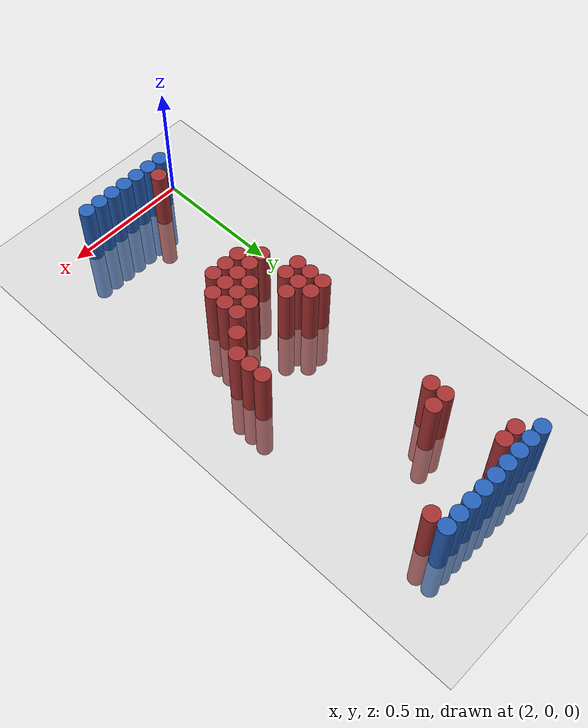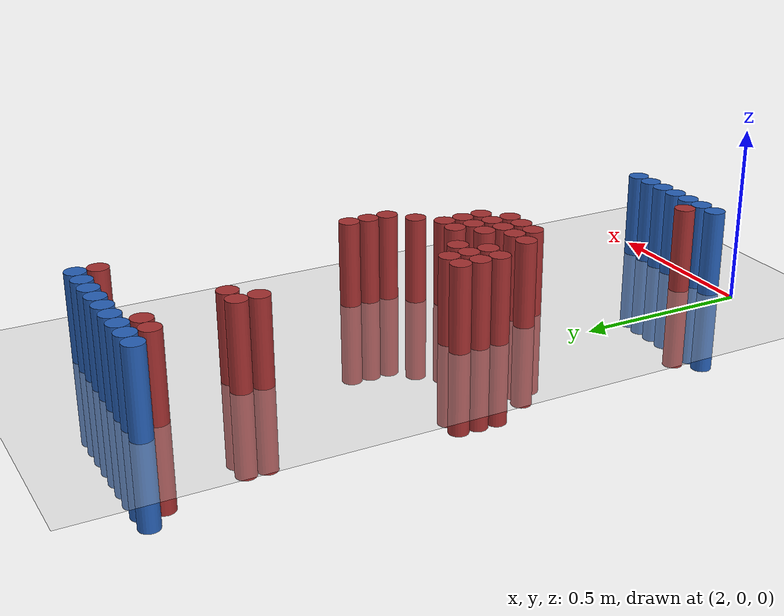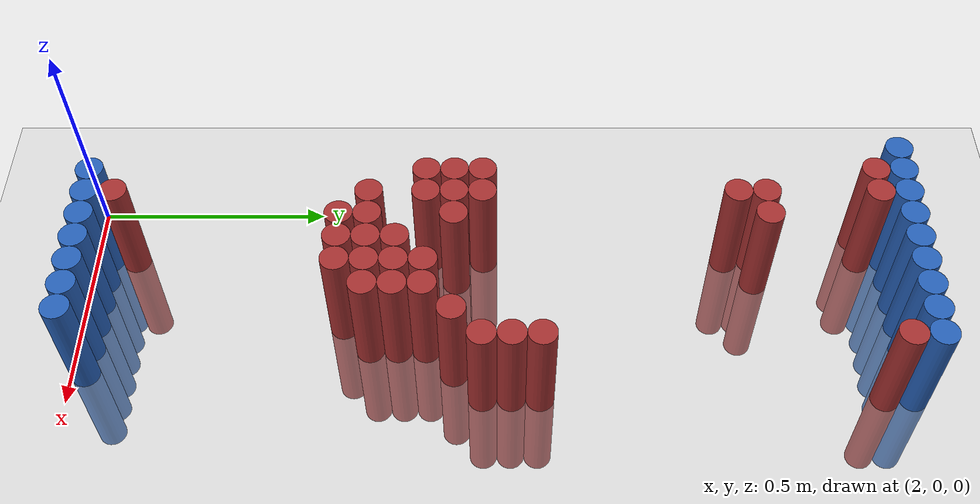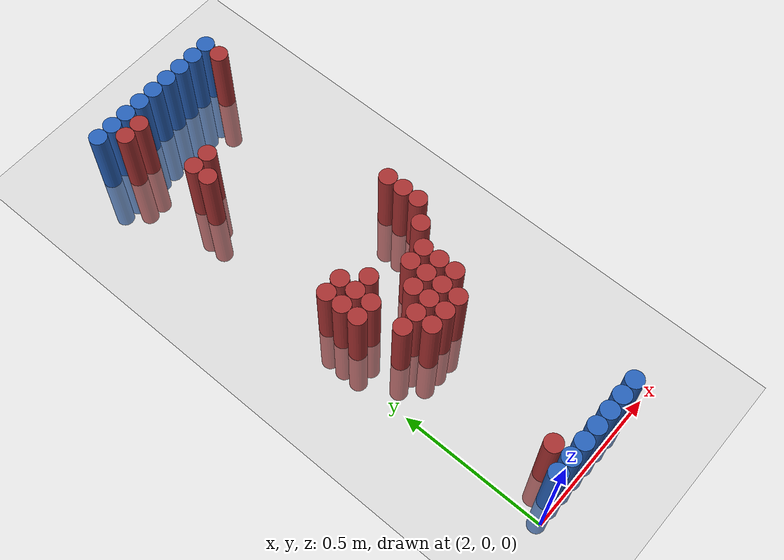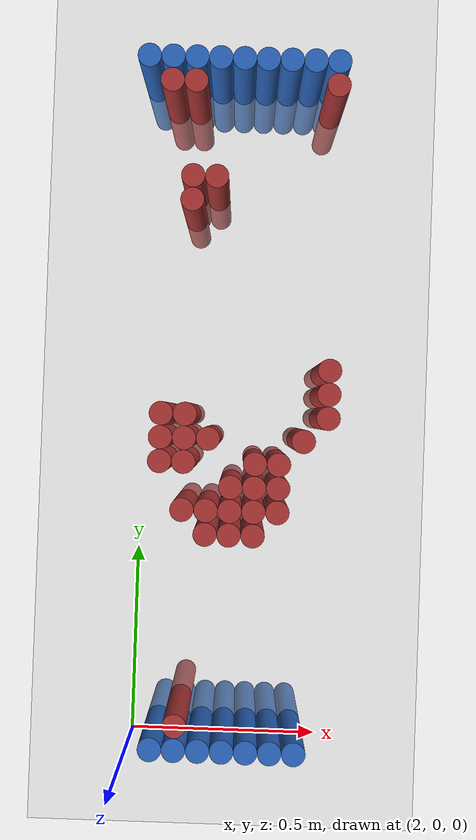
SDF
<sdf version="1.6">
 <world name="default">
  <model name="ground_plane">
   <static>1</static>
   <link name="link">
    <collision name="collision">
     <geometry><plane><normal>0 0 1</normal><size>100 100</size></plane></geometry>
     <surface><friction><ode><mu>100</mu><mu2>50</mu2></ode></friction></surface>
    </collision>
    <visual name="visual">
     <cast_shadows>0</cast_shadows>
     <geometry><plane><normal>0 0 1</normal><size>100 100</size></plane></geometry>
     <material>
      <script><uri>file://media/materials/scripts/gazebo.material</uri><name>Gazebo/Grey</name></script>
     </material>
    </visual>
   </link>
  </model>
  <model name="unit_cylinder_94">
   <static>1</static>
   <pose>2.010000 1.770000 0.000000 0.000000 0.000000 0.000000</pose>
   <link name="link">
    <inertial>
     <mass>1</mass>
     <inertia><ixx>0.145833</ixx><ixy>0</ixy><ixz>0</ixz><iyy>0.145833</iyy><iyz>0</iyz><izz>0.125</izz></inertia>
    </inertial>
    <collision name="collision">
     <geometry><cylinder><radius>0.030000</radius><length>0.5</length></cylinder></geometry>
    </collision>
    <visual name="visual">
     <geometry><cylinder><radius>0.030000</radius><length>0.5</length></cylinder></geometry>
     <material>
      <ambient>0.152000 0.379000 0.720000 1</ambient>
      <diffuse>0.152000 0.379000 0.720000 1</diffuse>
     </material>
     <material>
      <script><name>Gazebo/Grey</name><uri>file://media/materials/scripts/gazebo.material</uri></script>
     </material>
    </visual>
   </link>
  </model>
  <model name="unit_cylinder_95">
   <static>1</static>
   <pose>2.070000 1.770000 0.000000 0.000000 0.000000 0.000000</pose>
   <link name="link">
    <inertial>
     <mass>1</mass>
     <inertia><ixx>0.145833</ixx><ixy>0</ixy><ixz>0</ixz><iyy>0.145833</iyy><iyz>0</iyz><izz>0.125</izz></inertia>
    </inertial>
    <collision name="collision">
     <geometry><cylinder><radius>0.030000</radius><length>0.5</length></cylinder></geometry>
    </collision>
    <visual name="visual">
     <geometry><cylinder><radius>0.030000</radius><length>0.5</length></cylinder></geometry>
     <material>
      <ambient>0.152000 0.379000 0.720000 1</ambient>
      <diffuse>0.152000 0.379000 0.720000 1</diffuse>
     </material>
     <material>
      <script><name>Gazebo/Grey</name><uri>file://media/materials/scripts/gazebo.material</uri></script>
     </material>
    </visual>
   </link>
  </model>
  <model name="unit_cylinder_96">
   <static>1</static>
   <pose>2.130000 1.770000 0.000000 0.000000 0.000000 0.000000</pose>
   <link name="link">
    <inertial>
     <mass>1</mass>
     <inertia><ixx>0.145833</ixx><ixy>0</ixy><ixz>0</ixz><iyy>0.145833</iyy><iyz>0</iyz><izz>0.125</izz></inertia>
    </inertial>
    <collision name="collision">
     <geometry><cylinder><radius>0.030000</radius><length>0.5</length></cylinder></geometry>
    </collision>
    <visual name="visual">
     <geometry><cylinder><radius>0.030000</radius><length>0.5</length></cylinder></geometry>
     <material>
      <ambient>0.152000 0.379000 0.720000 1</ambient>
      <diffuse>0.152000 0.379000 0.720000 1</diffuse>
     </material>
     <material>
      <script><name>Gazebo/Grey</name><uri>file://media/materials/scripts/gazebo.material</uri></script>
     </material>
    </visual>
   </link>
  </model>
  <model name="unit_cylinder_97">
   <static>1</static>
   <pose>2.190000 1.770000 0.000000 0.000000 0.000000 0.000000</pose>
   <link name="link">
    <inertial>
     <mass>1</mass>
     <inertia><ixx>0.145833</ixx><ixy>0</ixy><ixz>0</ixz><iyy>0.145833</iyy><iyz>0</iyz><izz>0.125</izz></inertia>
    </inertial>
    <collision name="collision">
     <geometry><cylinder><radius>0.030000</radius><length>0.5</length></cylinder></geometry>
    </collision>
    <visual name="visual">
     <geometry><cylinder><radius>0.030000</radius><length>0.5</length></cylinder></geometry>
     <material>
      <ambient>0.152000 0.379000 0.720000 1</ambient>
      <diffuse>0.152000 0.379000 0.720000 1</diffuse>
     </material>
     <material>
      <script><name>Gazebo/Grey</name><uri>file://media/materials/scripts/gazebo.material</uri></script>
     </material>
    </visual>
   </link>
  </model>
  <model name="unit_cylinder_98">
   <static>1</static>
   <pose>2.250000 1.770000 0.000000 0.000000 0.000000 0.000000</pose>
   <link name="link">
    <inertial>
     <mass>1</mass>
     <inertia><ixx>0.145833</ixx><ixy>0</ixy><ixz>0</ixz><iyy>0.145833</iyy><iyz>0</iyz><izz>0.125</izz></inertia>
    </inertial>
    <collision name="collision">
     <geometry><cylinder><radius>0.030000</radius><length>0.5</length></cylinder></geometry>
    </collision>
    <visual name="visual">
     <geometry><cylinder><radius>0.030000</radius><length>0.5</length></cylinder></geometry>
     <material>
      <ambient>0.152000 0.379000 0.720000 1</ambient>
      <diffuse>0.152000 0.379000 0.720000 1</diffuse>
     </material>
     <material>
      <script><name>Gazebo/Grey</name><uri>file://media/materials/scripts/gazebo.material</uri></script>
     </material>
    </visual>
   </link>
  </model>
  <model name="unit_cylinder_99">
   <static>1</static>
   <pose>2.310000 1.770000 0.000000 0.000000 0.000000 0.000000</pose>
   <link name="link">
    <inertial>
     <mass>1</mass>
     <inertia><ixx>0.145833</ixx><ixy>0</ixy><ixz>0</ixz><iyy>0.145833</iyy><iyz>0</iyz><izz>0.125</izz></inertia>
    </inertial>
    <collision name="collision">
     <geometry><cylinder><radius>0.030000</radius><length>0.5</length></cylinder></geometry>
    </collision>
    <visual name="visual">
     <geometry><cylinder><radius>0.030000</radius><length>0.5</length></cylinder></geometry>
     <material>
      <ambient>0.152000 0.379000 0.720000 1</ambient>
      <diffuse>0.152000 0.379000 0.720000 1</diffuse>
     </material>
     <material>
      <script><name>Gazebo/Grey</name><uri>file://media/materials/scripts/gazebo.material</uri></script>
     </material>
    </visual>
   </link>
  </model>
  <model name="unit_cylinder_100">
   <static>1</static>
   <pose>2.370000 1.770000 0.000000 0.000000 0.000000 0.000000</pose>
   <link name="link">
    <inertial>
     <mass>1</mass>
     <inertia><ixx>0.145833</ixx><ixy>0</ixy><ixz>0</ixz><iyy>0.145833</iyy><iyz>0</iyz><izz>0.125</izz></inertia>
    </inertial>
    <collision name="collision">
     <geometry><cylinder><radius>0.030000</radius><length>0.5</length></cylinder></geometry>
    </collision>
    <visual name="visual">
     <geometry><cylinder><radius>0.030000</radius><length>0.5</length></cylinder></geometry>
     <material>
      <ambient>0.152000 0.379000 0.720000 1</ambient>
      <diffuse>0.152000 0.379000 0.720000 1</diffuse>
     </material>
     <material>
      <script><name>Gazebo/Grey</name><uri>file://media/materials/scripts/gazebo.material</uri></script>
     </material>
    </visual>
   </link>
  </model>
  <model name="unit_cylinder_101">
   <static>1</static>
   <pose>2.430000 1.770000 0.000000 0.000000 0.000000 0.000000</pose>
   <link name="link">
    <inertial>
     <mass>1</mass>
     <inertia><ixx>0.145833</ixx><ixy>0</ixy><ixz>0</ixz><iyy>0.145833</iyy><iyz>0</iyz><izz>0.125</izz></inertia>
    </inertial>
    <collision name="collision">
     <geometry><cylinder><radius>0.030000</radius><length>0.5</length></cylinder></geometry>
    </collision>
    <visual name="visual">
     <geometry><cylinder><radius>0.030000</radius><length>0.5</length></cylinder></geometry>
     <material>
      <ambient>0.152000 0.379000 0.720000 1</ambient>
      <diffuse>0.152000 0.379000 0.720000 1</diffuse>
     </material>
     <material>
      <script><name>Gazebo/Grey</name><uri>file://media/materials/scripts/gazebo.material</uri></script>
     </material>
    </visual>
   </link>
  </model>
  <model name="unit_cylinder_102">
   <static>1</static>
   <pose>2.490000 1.770000 0.000000 0.000000 0.000000 0.000000</pose>
   <link name="link">
    <inertial>
     <mass>1</mass>
     <inertia><ixx>0.145833</ixx><ixy>0</ixy><ixz>0</ixz><iyy>0.145833</iyy><iyz>0</iyz><izz>0.125</izz></inertia>
    </inertial>
    <collision name="collision">
     <geometry><cylinder><radius>0.030000</radius><length>0.5</length></cylinder></geometry>
    </collision>
    <visual name="visual">
     <geometry><cylinder><radius>0.030000</radius><length>0.5</length></cylinder></geometry>
     <material>
      <ambient>0.152000 0.379000 0.720000 1</ambient>
      <diffuse>0.152000 0.379000 0.720000 1</diffuse>
     </material>
     <material>
      <script><name>Gazebo/Grey</name><uri>file://media/materials/scripts/gazebo.material</uri></script>
     </material>
    </visual>
   </link>
  </model>
  <model name="unit_cylinder_125">
   <static>1</static>
   <pose>2.070000 1.710000 0.000000 0.000000 0.000000 0.000000</pose>
   <link name="link">
    <inertial>
     <mass>1</mass>
     <inertia><ixx>0.145833</ixx><ixy>0</ixy><ixz>0</ixz><iyy>0.145833</iyy><iyz>0</iyz><izz>0.125</izz></inertia>
    </inertial>
    <collision name="collision">
     <geometry><cylinder><radius>0.030000</radius><length>0.5</length></cylinder></geometry>
    </collision>
    <visual name="visual">
     <geometry><cylinder><radius>0.030000</radius><length>0.5</length></cylinder></geometry>
     <material>
      <ambient>0.648000 0.192000 0.192000 1</ambient>
      <diffuse>0.648000 0.192000 0.192000 1</diffuse>
     </material>
     <material>
      <script><name>Gazebo/Grey</name><uri>file://media/materials/scripts/gazebo.material</uri></script>
     </material>
    </visual>
   </link>
  </model>
  <model name="unit_cylinder_126">
   <static>1</static>
   <pose>2.130000 1.710000 0.000000 0.000000 0.000000 0.000000</pose>
   <link name="link">
    <inertial>
     <mass>1</mass>
     <inertia><ixx>0.145833</ixx><ixy>0</ixy><ixz>0</ixz><iyy>0.145833</iyy><iyz>0</iyz><izz>0.125</izz></inertia>
    </inertial>
    <collision name="collision">
     <geometry><cylinder><radius>0.030000</radius><length>0.5</length></cylinder></geometry>
    </collision>
    <visual name="visual">
     <geometry><cylinder><radius>0.030000</radius><length>0.5</length></cylinder></geometry>
     <material>
      <ambient>0.648000 0.192000 0.192000 1</ambient>
      <diffuse>0.648000 0.192000 0.192000 1</diffuse>
     </material>
     <material>
      <script><name>Gazebo/Grey</name><uri>file://media/materials/scripts/gazebo.material</uri></script>
     </material>
    </visual>
   </link>
  </model>
  <model name="unit_cylinder_127">
   <static>1</static>
   <pose>2.490000 1.710000 0.000000 0.000000 0.000000 0.000000</pose>
   <link name="link">
    <inertial>
     <mass>1</mass>
     <inertia><ixx>0.145833</ixx><ixy>0</ixy><ixz>0</ixz><iyy>0.145833</iyy><iyz>0</iyz><izz>0.125</izz></inertia>
    </inertial>
    <collision name="collision">
     <geometry><cylinder><radius>0.030000</radius><length>0.5</length></cylinder></geometry>
    </collision>
    <visual name="visual">
     <geometry><cylinder><radius>0.030000</radius><length>0.5</length></cylinder></geometry>
     <material>
      <ambient>0.648000 0.192000 0.192000 1</ambient>
      <diffuse>0.648000 0.192000 0.192000 1</diffuse>
     </material>
     <material>
      <script><name>Gazebo/Grey</name><uri>file://media/materials/scripts/gazebo.material</uri></script>
     </material>
    </visual>
   </link>
  </model>
  <model name="unit_cylinder_144">
   <static>1</static>
   <pose>2.130000 1.470000 0.000000 0.000000 0.000000 0.000000</pose>
   <link name="link">
    <inertial>
     <mass>1</mass>
     <inertia><ixx>0.145833</ixx><ixy>0</ixy><ixz>0</ixz><iyy>0.145833</iyy><iyz>0</iyz><izz>0.125</izz></inertia>
    </inertial>
    <collision name="collision">
     <geometry><cylinder><radius>0.030000</radius><length>0.5</length></cylinder></geometry>
    </collision>
    <visual name="visual">
     <geometry><cylinder><radius>0.030000</radius><length>0.5</length></cylinder></geometry>
     <material>
      <ambient>0.648000 0.192000 0.192000 1</ambient>
      <diffuse>0.648000 0.192000 0.192000 1</diffuse>
     </material>
     <material>
      <script><name>Gazebo/Grey</name><uri>file://media/materials/scripts/gazebo.material</uri></script>
     </material>
    </visual>
   </link>
  </model>
  <model name="unit_cylinder_145">
   <static>1</static>
   <pose>2.190000 1.470000 0.000000 0.000000 0.000000 0.000000</pose>
   <link name="link">
    <inertial>
     <mass>1</mass>
     <inertia><ixx>0.145833</ixx><ixy>0</ixy><ixz>0</ixz><iyy>0.145833</iyy><iyz>0</iyz><izz>0.125</izz></inertia>
    </inertial>
    <collision name="collision">
     <geometry><cylinder><radius>0.030000</radius><length>0.5</length></cylinder></geometry>
    </collision>
    <visual name="visual">
     <geometry><cylinder><radius>0.030000</radius><length>0.5</length></cylinder></geometry>
     <material>
      <ambient>0.648000 0.192000 0.192000 1</ambient>
      <diffuse>0.648000 0.192000 0.192000 1</diffuse>
     </material>
     <material>
      <script><name>Gazebo/Grey</name><uri>file://media/materials/scripts/gazebo.material</uri></script>
     </material>
    </visual>
   </link>
  </model>
  <model name="unit_cylinder_152">
   <static>1</static>
   <pose>2.130000 1.410000 0.000000 0.000000 0.000000 0.000000</pose>
   <link name="link">
    <inertial>
     <mass>1</mass>
     <inertia><ixx>0.145833</ixx><ixy>0</ixy><ixz>0</ixz><iyy>0.145833</iyy><iyz>0</iyz><izz>0.125</izz></inertia>
    </inertial>
    <collision name="collision">
     <geometry><cylinder><radius>0.030000</radius><length>0.5</length></cylinder></geometry>
    </collision>
    <visual name="visual">
     <geometry><cylinder><radius>0.030000</radius><length>0.5</length></cylinder></geometry>
     <material>
      <ambient>0.648000 0.192000 0.192000 1</ambient>
      <diffuse>0.648000 0.192000 0.192000 1</diffuse>
     </material>
     <material>
      <script><name>Gazebo/Grey</name><uri>file://media/materials/scripts/gazebo.material</uri></script>
     </material>
    </visual>
   </link>
  </model>
  <model name="unit_cylinder_203">
   <static>1</static>
   <pose>2.490000 0.990000 0.000000 0.000000 0.000000 0.000000</pose>
   <link name="link">
    <inertial>
     <mass>1</mass>
     <inertia><ixx>0.145833</ixx><ixy>0</ixy><ixz>0</ixz><iyy>0.145833</iyy><iyz>0</iyz><izz>0.125</izz></inertia>
    </inertial>
    <collision name="collision">
     <geometry><cylinder><radius>0.030000</radius><length>0.5</length></cylinder></geometry>
    </collision>
    <visual name="visual">
     <geometry><cylinder><radius>0.030000</radius><length>0.5</length></cylinder></geometry>
     <material>
      <ambient>0.648000 0.192000 0.192000 1</ambient>
      <diffuse>0.648000 0.192000 0.192000 1</diffuse>
     </material>
     <material>
      <script><name>Gazebo/Grey</name><uri>file://media/materials/scripts/gazebo.material</uri></script>
     </material>
    </visual>
   </link>
  </model>
  <model name="unit_cylinder_212">
   <static>1</static>
   <pose>2.490000 0.930000 0.000000 0.000000 0.000000 0.000000</pose>
   <link name="link">
    <inertial>
     <mass>1</mass>
     <inertia><ixx>0.145833</ixx><ixy>0</ixy><ixz>0</ixz><iyy>0.145833</iyy><iyz>0</iyz><izz>0.125</izz></inertia>
    </inertial>
    <collision name="collision">
     <geometry><cylinder><radius>0.030000</radius><length>0.5</length></cylinder></geometry>
    </collision>
    <visual name="visual">
     <geometry><cylinder><radius>0.030000</radius><length>0.5</length></cylinder></geometry>
     <material>
      <ambient>0.648000 0.192000 0.192000 1</ambient>
      <diffuse>0.648000 0.192000 0.192000 1</diffuse>
     </material>
     <material>
      <script><name>Gazebo/Grey</name><uri>file://media/materials/scripts/gazebo.material</uri></script>
     </material>
    </visual>
   </link>
  </model>
  <model name="unit_cylinder_218">
   <static>1</static>
   <pose>2.070000 0.870000 0.000000 0.000000 0.000000 0.000000</pose>
   <link name="link">
    <inertial>
     <mass>1</mass>
     <inertia><ixx>0.145833</ixx><ixy>0</ixy><ixz>0</ixz><iyy>0.145833</iyy><iyz>0</iyz><izz>0.125</izz></inertia>
    </inertial>
    <collision name="collision">
     <geometry><cylinder><radius>0.030000</radius><length>0.5</length></cylinder></geometry>
    </collision>
    <visual name="visual">
     <geometry><cylinder><radius>0.030000</radius><length>0.5</length></cylinder></geometry>
     <material>
      <ambient>0.648000 0.192000 0.192000 1</ambient>
      <diffuse>0.648000 0.192000 0.192000 1</diffuse>
     </material>
     <material>
      <script><name>Gazebo/Grey</name><uri>file://media/materials/scripts/gazebo.material</uri></script>
     </material>
    </visual>
   </link>
  </model>
  <model name="unit_cylinder_219">
   <static>1</static>
   <pose>2.130000 0.870000 0.000000 0.000000 0.000000 0.000000</pose>
   <link name="link">
    <inertial>
     <mass>1</mass>
     <inertia><ixx>0.145833</ixx><ixy>0</ixy><ixz>0</ixz><iyy>0.145833</iyy><iyz>0</iyz><izz>0.125</izz></inertia>
    </inertial>
    <collision name="collision">
     <geometry><cylinder><radius>0.030000</radius><length>0.5</length></cylinder></geometry>
    </collision>
    <visual name="visual">
     <geometry><cylinder><radius>0.030000</radius><length>0.5</length></cylinder></geometry>
     <material>
      <ambient>0.648000 0.192000 0.192000 1</ambient>
      <diffuse>0.648000 0.192000 0.192000 1</diffuse>
     </material>
     <material>
      <script><name>Gazebo/Grey</name><uri>file://media/materials/scripts/gazebo.material</uri></script>
     </material>
    </visual>
   </link>
  </model>
  <model name="unit_cylinder_220">
   <static>1</static>
   <pose>2.490000 0.870000 0.000000 0.000000 0.000000 0.000000</pose>
   <link name="link">
    <inertial>
     <mass>1</mass>
     <inertia><ixx>0.145833</ixx><ixy>0</ixy><ixz>0</ixz><iyy>0.145833</iyy><iyz>0</iyz><izz>0.125</izz></inertia>
    </inertial>
    <collision name="collision">
     <geometry><cylinder><radius>0.030000</radius><length>0.5</length></cylinder></geometry>
    </collision>
    <visual name="visual">
     <geometry><cylinder><radius>0.030000</radius><length>0.5</length></cylinder></geometry>
     <material>
      <ambient>0.648000 0.192000 0.192000 1</ambient>
      <diffuse>0.648000 0.192000 0.192000 1</diffuse>
     </material>
     <material>
      <script><name>Gazebo/Grey</name><uri>file://media/materials/scripts/gazebo.material</uri></script>
     </material>
    </visual>
   </link>
  </model>
  <model name="unit_cylinder_227">
   <static>1</static>
   <pose>2.070000 0.810000 0.000000 0.000000 0.000000 0.000000</pose>
   <link name="link">
    <inertial>
     <mass>1</mass>
     <inertia><ixx>0.145833</ixx><ixy>0</ixy><ixz>0</ixz><iyy>0.145833</iyy><iyz>0</iyz><izz>0.125</izz></inertia>
    </inertial>
    <collision name="collision">
     <geometry><cylinder><radius>0.030000</radius><length>0.5</length></cylinder></geometry>
    </collision>
    <visual name="visual">
     <geometry><cylinder><radius>0.030000</radius><length>0.5</length></cylinder></geometry>
     <material>
      <ambient>0.648000 0.192000 0.192000 1</ambient>
      <diffuse>0.648000 0.192000 0.192000 1</diffuse>
     </material>
     <material>
      <script><name>Gazebo/Grey</name><uri>file://media/materials/scripts/gazebo.material</uri></script>
     </material>
    </visual>
   </link>
  </model>
  <model name="unit_cylinder_228">
   <static>1</static>
   <pose>2.130000 0.810000 0.000000 0.000000 0.000000 0.000000</pose>
   <link name="link">
    <inertial>
     <mass>1</mass>
     <inertia><ixx>0.145833</ixx><ixy>0</ixy><ixz>0</ixz><iyy>0.145833</iyy><iyz>0</iyz><izz>0.125</izz></inertia>
    </inertial>
    <collision name="collision">
     <geometry><cylinder><radius>0.030000</radius><length>0.5</length></cylinder></geometry>
    </collision>
    <visual name="visual">
     <geometry><cylinder><radius>0.030000</radius><length>0.5</length></cylinder></geometry>
     <material>
      <ambient>0.648000 0.192000 0.192000 1</ambient>
      <diffuse>0.648000 0.192000 0.192000 1</diffuse>
     </material>
     <material>
      <script><name>Gazebo/Grey</name><uri>file://media/materials/scripts/gazebo.material</uri></script>
     </material>
    </visual>
   </link>
  </model>
  <model name="unit_cylinder_229">
   <static>1</static>
   <pose>2.190000 0.810000 0.000000 0.000000 0.000000 0.000000</pose>
   <link name="link">
    <inertial>
     <mass>1</mass>
     <inertia><ixx>0.145833</ixx><ixy>0</ixy><ixz>0</ixz><iyy>0.145833</iyy><iyz>0</iyz><izz>0.125</izz></inertia>
    </inertial>
    <collision name="collision">
     <geometry><cylinder><radius>0.030000</radius><length>0.5</length></cylinder></geometry>
    </collision>
    <visual name="visual">
     <geometry><cylinder><radius>0.030000</radius><length>0.5</length></cylinder></geometry>
     <material>
      <ambient>0.648000 0.192000 0.192000 1</ambient>
      <diffuse>0.648000 0.192000 0.192000 1</diffuse>
     </material>
     <material>
      <script><name>Gazebo/Grey</name><uri>file://media/materials/scripts/gazebo.material</uri></script>
     </material>
    </visual>
   </link>
  </model>
  <model name="unit_cylinder_230">
   <static>1</static>
   <pose>2.430000 0.810000 0.000000 0.000000 0.000000 0.000000</pose>
   <link name="link">
    <inertial>
     <mass>1</mass>
     <inertia><ixx>0.145833</ixx><ixy>0</ixy><ixz>0</ixz><iyy>0.145833</iyy><iyz>0</iyz><izz>0.125</izz></inertia>
    </inertial>
    <collision name="collision">
     <geometry><cylinder><radius>0.030000</radius><length>0.5</length></cylinder></geometry>
    </collision>
    <visual name="visual">
     <geometry><cylinder><radius>0.030000</radius><length>0.5</length></cylinder></geometry>
     <material>
      <ambient>0.648000 0.192000 0.192000 1</ambient>
      <diffuse>0.648000 0.192000 0.192000 1</diffuse>
     </material>
     <material>
      <script><name>Gazebo/Grey</name><uri>file://media/materials/scripts/gazebo.material</uri></script>
     </material>
    </visual>
   </link>
  </model>
  <model name="unit_cylinder_235">
   <static>1</static>
   <pose>2.070000 0.750000 0.000000 0.000000 0.000000 0.000000</pose>
   <link name="link">
    <inertial>
     <mass>1</mass>
     <inertia><ixx>0.145833</ixx><ixy>0</ixy><ixz>0</ixz><iyy>0.145833</iyy><iyz>0</iyz><izz>0.125</izz></inertia>
    </inertial>
    <collision name="collision">
     <geometry><cylinder><radius>0.030000</radius><length>0.5</length></cylinder></geometry>
    </collision>
    <visual name="visual">
     <geometry><cylinder><radius>0.030000</radius><length>0.5</length></cylinder></geometry>
     <material>
      <ambient>0.648000 0.192000 0.192000 1</ambient>
      <diffuse>0.648000 0.192000 0.192000 1</diffuse>
     </material>
     <material>
      <script><name>Gazebo/Grey</name><uri>file://media/materials/scripts/gazebo.material</uri></script>
     </material>
    </visual>
   </link>
  </model>
  <model name="unit_cylinder_236">
   <static>1</static>
   <pose>2.130000 0.750000 0.000000 0.000000 0.000000 0.000000</pose>
   <link name="link">
    <inertial>
     <mass>1</mass>
     <inertia><ixx>0.145833</ixx><ixy>0</ixy><ixz>0</ixz><iyy>0.145833</iyy><iyz>0</iyz><izz>0.125</izz></inertia>
    </inertial>
    <collision name="collision">
     <geometry><cylinder><radius>0.030000</radius><length>0.5</length></cylinder></geometry>
    </collision>
    <visual name="visual">
     <geometry><cylinder><radius>0.030000</radius><length>0.5</length></cylinder></geometry>
     <material>
      <ambient>0.648000 0.192000 0.192000 1</ambient>
      <diffuse>0.648000 0.192000 0.192000 1</diffuse>
     </material>
     <material>
      <script><name>Gazebo/Grey</name><uri>file://media/materials/scripts/gazebo.material</uri></script>
     </material>
    </visual>
   </link>
  </model>
  <model name="unit_cylinder_237">
   <static>1</static>
   <pose>2.310000 0.750000 0.000000 0.000000 0.000000 0.000000</pose>
   <link name="link">
    <inertial>
     <mass>1</mass>
     <inertia><ixx>0.145833</ixx><ixy>0</ixy><ixz>0</ixz><iyy>0.145833</iyy><iyz>0</iyz><izz>0.125</izz></inertia>
    </inertial>
    <collision name="collision">
     <geometry><cylinder><radius>0.030000</radius><length>0.5</length></cylinder></geometry>
    </collision>
    <visual name="visual">
     <geometry><cylinder><radius>0.030000</radius><length>0.5</length></cylinder></geometry>
     <material>
      <ambient>0.648000 0.192000 0.192000 1</ambient>
      <diffuse>0.648000 0.192000 0.192000 1</diffuse>
     </material>
     <material>
      <script><name>Gazebo/Grey</name><uri>file://media/materials/scripts/gazebo.material</uri></script>
     </material>
    </visual>
   </link>
  </model>
  <model name="unit_cylinder_238">
   <static>1</static>
   <pose>2.370000 0.750000 0.000000 0.000000 0.000000 0.000000</pose>
   <link name="link">
    <inertial>
     <mass>1</mass>
     <inertia><ixx>0.145833</ixx><ixy>0</ixy><ixz>0</ixz><iyy>0.145833</iyy><iyz>0</iyz><izz>0.125</izz></inertia>
    </inertial>
    <collision name="collision">
     <geometry><cylinder><radius>0.030000</radius><length>0.5</length></cylinder></geometry>
    </collision>
    <visual name="visual">
     <geometry><cylinder><radius>0.030000</radius><length>0.5</length></cylinder></geometry>
     <material>
      <ambient>0.648000 0.192000 0.192000 1</ambient>
      <diffuse>0.648000 0.192000 0.192000 1</diffuse>
     </material>
     <material>
      <script><name>Gazebo/Grey</name><uri>file://media/materials/scripts/gazebo.material</uri></script>
     </material>
    </visual>
   </link>
  </model>
  <model name="unit_cylinder_243">
   <static>1</static>
   <pose>2.250000 0.690000 0.000000 0.000000 0.000000 0.000000</pose>
   <link name="link">
    <inertial>
     <mass>1</mass>
     <inertia><ixx>0.145833</ixx><ixy>0</ixy><ixz>0</ixz><iyy>0.145833</iyy><iyz>0</iyz><izz>0.125</izz></inertia>
    </inertial>
    <collision name="collision">
     <geometry><cylinder><radius>0.030000</radius><length>0.5</length></cylinder></geometry>
    </collision>
    <visual name="visual">
     <geometry><cylinder><radius>0.030000</radius><length>0.5</length></cylinder></geometry>
     <material>
      <ambient>0.648000 0.192000 0.192000 1</ambient>
      <diffuse>0.648000 0.192000 0.192000 1</diffuse>
     </material>
     <material>
      <script><name>Gazebo/Grey</name><uri>file://media/materials/scripts/gazebo.material</uri></script>
     </material>
    </visual>
   </link>
  </model>
  <model name="unit_cylinder_244">
   <static>1</static>
   <pose>2.310000 0.690000 0.000000 0.000000 0.000000 0.000000</pose>
   <link name="link">
    <inertial>
     <mass>1</mass>
     <inertia><ixx>0.145833</ixx><ixy>0</ixy><ixz>0</ixz><iyy>0.145833</iyy><iyz>0</iyz><izz>0.125</izz></inertia>
    </inertial>
    <collision name="collision">
     <geometry><cylinder><radius>0.030000</radius><length>0.5</length></cylinder></geometry>
    </collision>
    <visual name="visual">
     <geometry><cylinder><radius>0.030000</radius><length>0.5</length></cylinder></geometry>
     <material>
      <ambient>0.648000 0.192000 0.192000 1</ambient>
      <diffuse>0.648000 0.192000 0.192000 1</diffuse>
     </material>
     <material>
      <script><name>Gazebo/Grey</name><uri>file://media/materials/scripts/gazebo.material</uri></script>
     </material>
    </visual>
   </link>
  </model>
  <model name="unit_cylinder_245">
   <static>1</static>
   <pose>2.370000 0.690000 0.000000 0.000000 0.000000 0.000000</pose>
   <link name="link">
    <inertial>
     <mass>1</mass>
     <inertia><ixx>0.145833</ixx><ixy>0</ixy><ixz>0</ixz><iyy>0.145833</iyy><iyz>0</iyz><izz>0.125</izz></inertia>
    </inertial>
    <collision name="collision">
     <geometry><cylinder><radius>0.030000</radius><length>0.5</length></cylinder></geometry>
    </collision>
    <visual name="visual">
     <geometry><cylinder><radius>0.030000</radius><length>0.5</length></cylinder></geometry>
     <material>
      <ambient>0.648000 0.192000 0.192000 1</ambient>
      <diffuse>0.648000 0.192000 0.192000 1</diffuse>
     </material>
     <material>
      <script><name>Gazebo/Grey</name><uri>file://media/materials/scripts/gazebo.material</uri></script>
     </material>
    </visual>
   </link>
  </model>
  <model name="unit_cylinder_249">
   <static>1</static>
   <pose>2.130000 0.630000 0.000000 0.000000 0.000000 0.000000</pose>
   <link name="link">
    <inertial>
     <mass>1</mass>
     <inertia><ixx>0.145833</ixx><ixy>0</ixy><ixz>0</ixz><iyy>0.145833</iyy><iyz>0</iyz><izz>0.125</izz></inertia>
    </inertial>
    <collision name="collision">
     <geometry><cylinder><radius>0.030000</radius><length>0.5</length></cylinder></geometry>
    </collision>
    <visual name="visual">
     <geometry><cylinder><radius>0.030000</radius><length>0.5</length></cylinder></geometry>
     <material>
      <ambient>0.648000 0.192000 0.192000 1</ambient>
      <diffuse>0.648000 0.192000 0.192000 1</diffuse>
     </material>
     <material>
      <script><name>Gazebo/Grey</name><uri>file://media/materials/scripts/gazebo.material</uri></script>
     </material>
    </visual>
   </link>
  </model>
  <model name="unit_cylinder_250">
   <static>1</static>
   <pose>2.190000 0.630000 0.000000 0.000000 0.000000 0.000000</pose>
   <link name="link">
    <inertial>
     <mass>1</mass>
     <inertia><ixx>0.145833</ixx><ixy>0</ixy><ixz>0</ixz><iyy>0.145833</iyy><iyz>0</iyz><izz>0.125</izz></inertia>
    </inertial>
    <collision name="collision">
     <geometry><cylinder><radius>0.030000</radius><length>0.5</length></cylinder></geometry>
    </collision>
    <visual name="visual">
     <geometry><cylinder><radius>0.030000</radius><length>0.5</length></cylinder></geometry>
     <material>
      <ambient>0.648000 0.192000 0.192000 1</ambient>
      <diffuse>0.648000 0.192000 0.192000 1</diffuse>
     </material>
     <material>
      <script><name>Gazebo/Grey</name><uri>file://media/materials/scripts/gazebo.material</uri></script>
     </material>
    </visual>
   </link>
  </model>
  <model name="unit_cylinder_251">
   <static>1</static>
   <pose>2.250000 0.630000 0.000000 0.000000 0.000000 0.000000</pose>
   <link name="link">
    <inertial>
     <mass>1</mass>
     <inertia><ixx>0.145833</ixx><ixy>0</ixy><ixz>0</ixz><iyy>0.145833</iyy><iyz>0</iyz><izz>0.125</izz></inertia>
    </inertial>
    <collision name="collision">
     <geometry><cylinder><radius>0.030000</radius><length>0.5</length></cylinder></geometry>
    </collision>
    <visual name="visual">
     <geometry><cylinder><radius>0.030000</radius><length>0.5</length></cylinder></geometry>
     <material>
      <ambient>0.648000 0.192000 0.192000 1</ambient>
      <diffuse>0.648000 0.192000 0.192000 1</diffuse>
     </material>
     <material>
      <script><name>Gazebo/Grey</name><uri>file://media/materials/scripts/gazebo.material</uri></script>
     </material>
    </visual>
   </link>
  </model>
  <model name="unit_cylinder_252">
   <static>1</static>
   <pose>2.310000 0.630000 0.000000 0.000000 0.000000 0.000000</pose>
   <link name="link">
    <inertial>
     <mass>1</mass>
     <inertia><ixx>0.145833</ixx><ixy>0</ixy><ixz>0</ixz><iyy>0.145833</iyy><iyz>0</iyz><izz>0.125</izz></inertia>
    </inertial>
    <collision name="collision">
     <geometry><cylinder><radius>0.030000</radius><length>0.5</length></cylinder></geometry>
    </collision>
    <visual name="visual">
     <geometry><cylinder><radius>0.030000</radius><length>0.5</length></cylinder></geometry>
     <material>
      <ambient>0.648000 0.192000 0.192000 1</ambient>
      <diffuse>0.648000 0.192000 0.192000 1</diffuse>
     </material>
     <material>
      <script><name>Gazebo/Grey</name><uri>file://media/materials/scripts/gazebo.material</uri></script>
     </material>
    </visual>
   </link>
  </model>
  <model name="unit_cylinder_253">
   <static>1</static>
   <pose>2.370000 0.630000 0.000000 0.000000 0.000000 0.000000</pose>
   <link name="link">
    <inertial>
     <mass>1</mass>
     <inertia><ixx>0.145833</ixx><ixy>0</ixy><ixz>0</ixz><iyy>0.145833</iyy><iyz>0</iyz><izz>0.125</izz></inertia>
    </inertial>
    <collision name="collision">
     <geometry><cylinder><radius>0.030000</radius><length>0.5</length></cylinder></geometry>
    </collision>
    <visual name="visual">
     <geometry><cylinder><radius>0.030000</radius><length>0.5</length></cylinder></geometry>
     <material>
      <ambient>0.648000 0.192000 0.192000 1</ambient>
      <diffuse>0.648000 0.192000 0.192000 1</diffuse>
     </material>
     <material>
      <script><name>Gazebo/Grey</name><uri>file://media/materials/scripts/gazebo.material</uri></script>
     </material>
    </visual>
   </link>
  </model>
  <model name="unit_cylinder_255">
   <static>1</static>
   <pose>2.190000 0.570000 0.000000 0.000000 0.000000 0.000000</pose>
   <link name="link">
    <inertial>
     <mass>1</mass>
     <inertia><ixx>0.145833</ixx><ixy>0</ixy><ixz>0</ixz><iyy>0.145833</iyy><iyz>0</iyz><izz>0.125</izz></inertia>
    </inertial>
    <collision name="collision">
     <geometry><cylinder><radius>0.030000</radius><length>0.5</length></cylinder></geometry>
    </collision>
    <visual name="visual">
     <geometry><cylinder><radius>0.030000</radius><length>0.5</length></cylinder></geometry>
     <material>
      <ambient>0.648000 0.192000 0.192000 1</ambient>
      <diffuse>0.648000 0.192000 0.192000 1</diffuse>
     </material>
     <material>
      <script><name>Gazebo/Grey</name><uri>file://media/materials/scripts/gazebo.material</uri></script>
     </material>
    </visual>
   </link>
  </model>
  <model name="unit_cylinder_256">
   <static>1</static>
   <pose>2.250000 0.570000 0.000000 0.000000 0.000000 0.000000</pose>
   <link name="link">
    <inertial>
     <mass>1</mass>
     <inertia><ixx>0.145833</ixx><ixy>0</ixy><ixz>0</ixz><iyy>0.145833</iyy><iyz>0</iyz><izz>0.125</izz></inertia>
    </inertial>
    <collision name="collision">
     <geometry><cylinder><radius>0.030000</radius><length>0.5</length></cylinder></geometry>
    </collision>
    <visual name="visual">
     <geometry><cylinder><radius>0.030000</radius><length>0.5</length></cylinder></geometry>
     <material>
      <ambient>0.648000 0.192000 0.192000 1</ambient>
      <diffuse>0.648000 0.192000 0.192000 1</diffuse>
     </material>
     <material>
      <script><name>Gazebo/Grey</name><uri>file://media/materials/scripts/gazebo.material</uri></script>
     </material>
    </visual>
   </link>
  </model>
  <model name="unit_cylinder_257">
   <static>1</static>
   <pose>2.310000 0.570000 0.000000 0.000000 0.000000 0.000000</pose>
   <link name="link">
    <inertial>
     <mass>1</mass>
     <inertia><ixx>0.145833</ixx><ixy>0</ixy><ixz>0</ixz><iyy>0.145833</iyy><iyz>0</iyz><izz>0.125</izz></inertia>
    </inertial>
    <collision name="collision">
     <geometry><cylinder><radius>0.030000</radius><length>0.5</length></cylinder></geometry>
    </collision>
    <visual name="visual">
     <geometry><cylinder><radius>0.030000</radius><length>0.5</length></cylinder></geometry>
     <material>
      <ambient>0.648000 0.192000 0.192000 1</ambient>
      <diffuse>0.648000 0.192000 0.192000 1</diffuse>
     </material>
     <material>
      <script><name>Gazebo/Grey</name><uri>file://media/materials/scripts/gazebo.material</uri></script>
     </material>
    </visual>
   </link>
  </model>
  <model name="unit_cylinder_285">
   <static>1</static>
   <pose>2.130000 0.090000 0.000000 0.000000 0.000000 0.000000</pose>
   <link name="link">
    <inertial>
     <mass>1</mass>
     <inertia><ixx>0.145833</ixx><ixy>0</ixy><ixz>0</ixz><iyy>0.145833</iyy><iyz>0</iyz><izz>0.125</izz></inertia>
    </inertial>
    <collision name="collision">
     <geometry><cylinder><radius>0.030000</radius><length>0.5</length></cylinder></geometry>
    </collision>
    <visual name="visual">
     <geometry><cylinder><radius>0.030000</radius><length>0.5</length></cylinder></geometry>
     <material>
      <ambient>0.648000 0.192000 0.192000 1</ambient>
      <diffuse>0.648000 0.192000 0.192000 1</diffuse>
     </material>
     <material>
      <script><name>Gazebo/Grey</name><uri>file://media/materials/scripts/gazebo.material</uri></script>
     </material>
    </visual>
   </link>
  </model>
  <model name="unit_cylinder_300">
   <static>1</static>
   <pose>2.070000 0.030000 0.000000 0.000000 0.000000 0.000000</pose>
   <link name="link">
    <inertial>
     <mass>1</mass>
     <inertia><ixx>0.145833</ixx><ixy>0</ixy><ixz>0</ixz><iyy>0.145833</iyy><iyz>0</iyz><izz>0.125</izz></inertia>
    </inertial>
    <collision name="collision">
     <geometry><cylinder><radius>0.030000</radius><length>0.5</length></cylinder></geometry>
    </collision>
    <visual name="visual">
     <geometry><cylinder><radius>0.030000</radius><length>0.5</length></cylinder></geometry>
     <material>
      <ambient>0.152000 0.379000 0.720000 1</ambient>
      <diffuse>0.152000 0.379000 0.720000 1</diffuse>
     </material>
     <material>
      <script><name>Gazebo/Grey</name><uri>file://media/materials/scripts/gazebo.material</uri></script>
     </material>
    </visual>
   </link>
  </model>
  <model name="unit_cylinder_301">
   <static>1</static>
   <pose>2.130000 0.030000 0.000000 0.000000 0.000000 0.000000</pose>
   <link name="link">
    <inertial>
     <mass>1</mass>
     <inertia><ixx>0.145833</ixx><ixy>0</ixy><ixz>0</ixz><iyy>0.145833</iyy><iyz>0</iyz><izz>0.125</izz></inertia>
    </inertial>
    <collision name="collision">
     <geometry><cylinder><radius>0.030000</radius><length>0.5</length></cylinder></geometry>
    </collision>
    <visual name="visual">
     <geometry><cylinder><radius>0.030000</radius><length>0.5</length></cylinder></geometry>
     <material>
      <ambient>0.152000 0.379000 0.720000 1</ambient>
      <diffuse>0.152000 0.379000 0.720000 1</diffuse>
     </material>
     <material>
      <script><name>Gazebo/Grey</name><uri>file://media/materials/scripts/gazebo.material</uri></script>
     </material>
    </visual>
   </link>
  </model>
  <model name="unit_cylinder_302">
   <static>1</static>
   <pose>2.190000 0.030000 0.000000 0.000000 0.000000 0.000000</pose>
   <link name="link">
    <inertial>
     <mass>1</mass>
     <inertia><ixx>0.145833</ixx><ixy>0</ixy><ixz>0</ixz><iyy>0.145833</iyy><iyz>0</iyz><izz>0.125</izz></inertia>
    </inertial>
    <collision name="collision">
     <geometry><cylinder><radius>0.030000</radius><length>0.5</length></cylinder></geometry>
    </collision>
    <visual name="visual">
     <geometry><cylinder><radius>0.030000</radius><length>0.5</length></cylinder></geometry>
     <material>
      <ambient>0.152000 0.379000 0.720000 1</ambient>
      <diffuse>0.152000 0.379000 0.720000 1</diffuse>
     </material>
     <material>
      <script><name>Gazebo/Grey</name><uri>file://media/materials/scripts/gazebo.material</uri></script>
     </material>
    </visual>
   </link>
  </model>
  <model name="unit_cylinder_303">
   <static>1</static>
   <pose>2.250000 0.030000 0.000000 0.000000 0.000000 0.000000</pose>
   <link name="link">
    <inertial>
     <mass>1</mass>
     <inertia><ixx>0.145833</ixx><ixy>0</ixy><ixz>0</ixz><iyy>0.145833</iyy><iyz>0</iyz><izz>0.125</izz></inertia>
    </inertial>
    <collision name="collision">
     <geometry><cylinder><radius>0.030000</radius><length>0.5</length></cylinder></geometry>
    </collision>
    <visual name="visual">
     <geometry><cylinder><radius>0.030000</radius><length>0.5</length></cylinder></geometry>
     <material>
      <ambient>0.152000 0.379000 0.720000 1</ambient>
      <diffuse>0.152000 0.379000 0.720000 1</diffuse>
     </material>
     <material>
      <script><name>Gazebo/Grey</name><uri>file://media/materials/scripts/gazebo.material</uri></script>
     </material>
    </visual>
   </link>
  </model>
  <model name="unit_cylinder_304">
   <static>1</static>
   <pose>2.310000 0.030000 0.000000 0.000000 0.000000 0.000000</pose>
   <link name="link">
    <inertial>
     <mass>1</mass>
     <inertia><ixx>0.145833</ixx><ixy>0</ixy><ixz>0</ixz><iyy>0.145833</iyy><iyz>0</iyz><izz>0.125</izz></inertia>
    </inertial>
    <collision name="collision">
     <geometry><cylinder><radius>0.030000</radius><length>0.5</length></cylinder></geometry>
    </collision>
    <visual name="visual">
     <geometry><cylinder><radius>0.030000</radius><length>0.5</length></cylinder></geometry>
     <material>
      <ambient>0.152000 0.379000 0.720000 1</ambient>
      <diffuse>0.152000 0.379000 0.720000 1</diffuse>
     </material>
     <material>
      <script><name>Gazebo/Grey</name><uri>file://media/materials/scripts/gazebo.material</uri></script>
     </material>
    </visual>
   </link>
  </model>
  <model name="unit_cylinder_305">
   <static>1</static>
   <pose>2.370000 0.030000 0.000000 0.000000 0.000000 0.000000</pose>
   <link name="link">
    <inertial>
     <mass>1</mass>
     <inertia><ixx>0.145833</ixx><ixy>0</ixy><ixz>0</ixz><iyy>0.145833</iyy><iyz>0</iyz><izz>0.125</izz></inertia>
    </inertial>
    <collision name="collision">
     <geometry><cylinder><radius>0.030000</radius><length>0.5</length></cylinder></geometry>
    </collision>
    <visual name="visual">
     <geometry><cylinder><radius>0.030000</radius><length>0.5</length></cylinder></geometry>
     <material>
      <ambient>0.152000 0.379000 0.720000 1</ambient>
      <diffuse>0.152000 0.379000 0.720000 1</diffuse>
     </material>
     <material>
      <script><name>Gazebo/Grey</name><uri>file://media/materials/scripts/gazebo.material</uri></script>
     </material>
    </visual>
   </link>
  </model>
  <model name="unit_cylinder_306">
   <static>1</static>
   <pose>2.430000 0.030000 0.000000 0.000000 0.000000 0.000000</pose>
   <link name="link">
    <inertial>
     <mass>1</mass>
     <inertia><ixx>0.145833</ixx><ixy>0</ixy><ixz>0</ixz><iyy>0.145833</iyy><iyz>0</iyz><izz>0.125</izz></inertia>
    </inertial>
    <collision name="collision">
     <geometry><cylinder><radius>0.030000</radius><length>0.5</length></cylinder></geometry>
    </collision>
    <visual name="visual">
     <geometry><cylinder><radius>0.030000</radius><length>0.5</length></cylinder></geometry>
     <material>
      <ambient>0.152000 0.379000 0.720000 1</ambient>
      <diffuse>0.152000 0.379000 0.720000 1</diffuse>
     </material>
     <material>
      <script><name>Gazebo/Grey</name><uri>file://media/materials/scripts/gazebo.material</uri></script>
     </material>
    </visual>
   </link>
  </model>
 </world>
</sdf>
